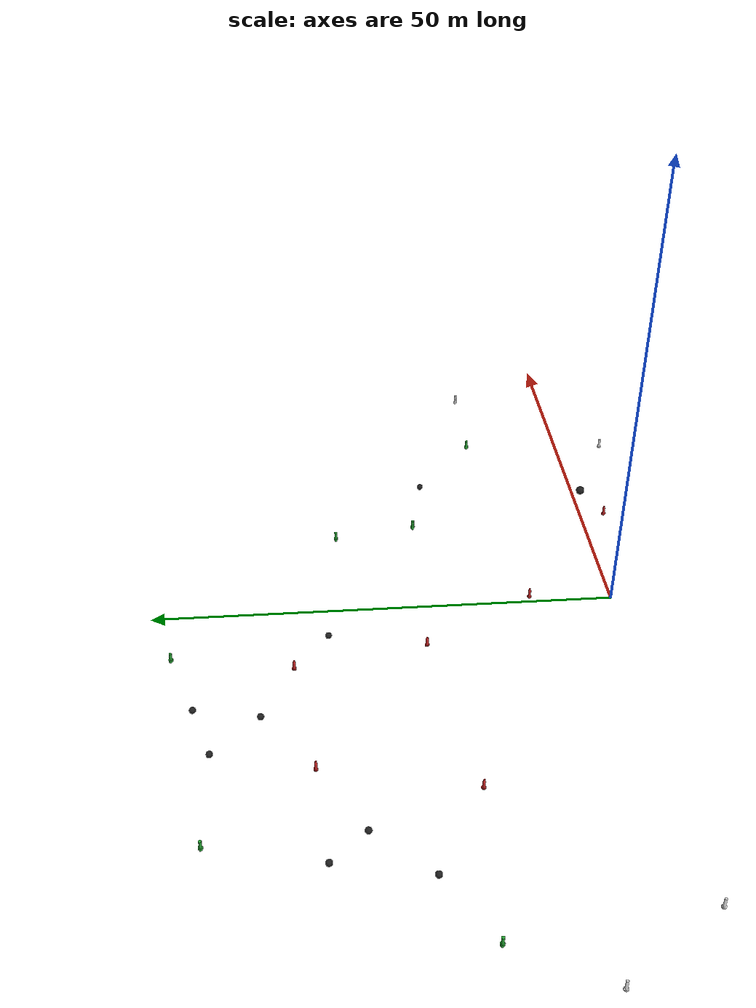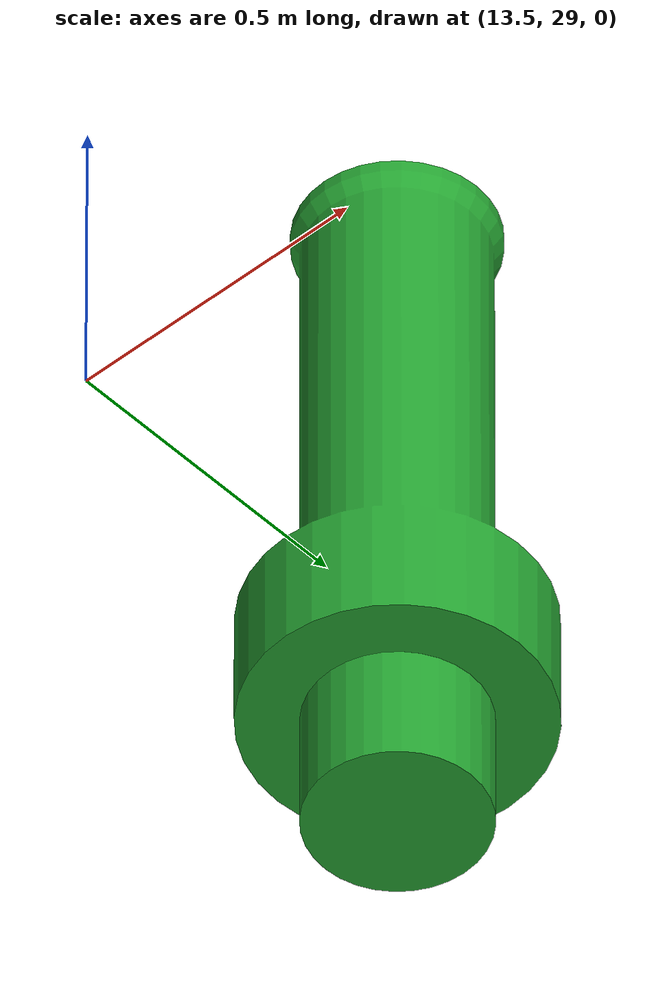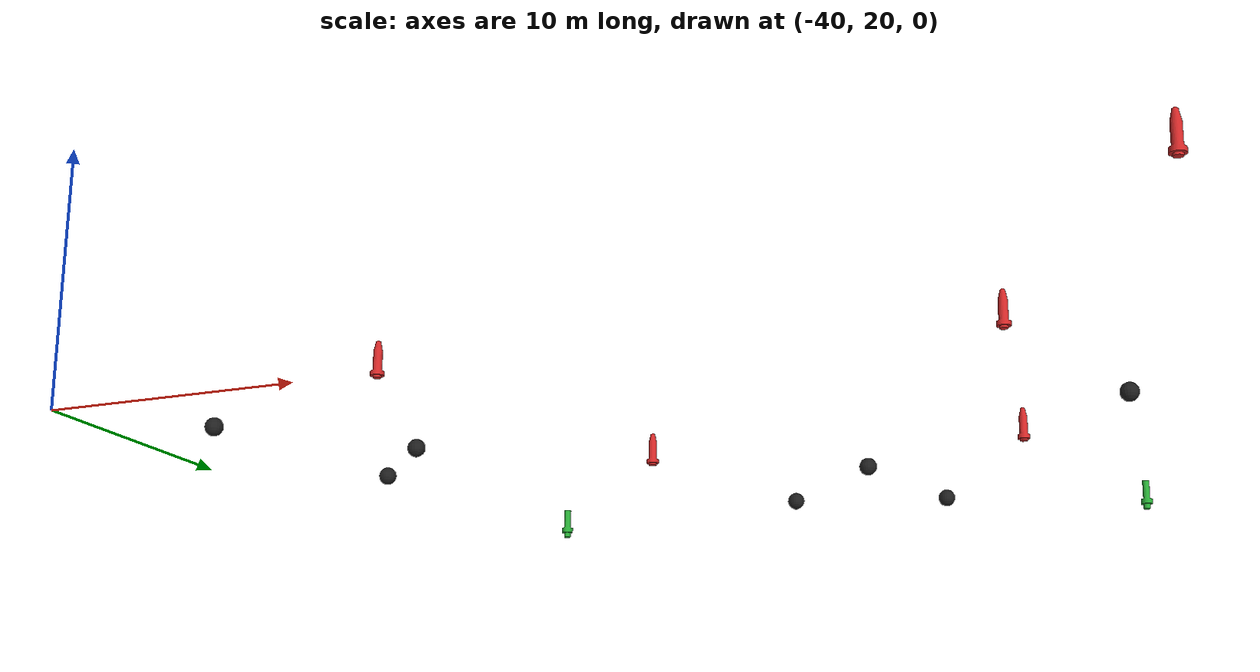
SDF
<?xml version="1.0"?>
<!-- Prototype of the VRX navigation task -->
<sdf version="1.6">
  <model name="navigation_task_2022">
    <!-- Start -->
    <!-- Starboard_border -->
    <include>
      <name>red_bound_start</name>
      <pose>30.8874 -5.80274 -0.2 0 -0 0</pose>
      <uri>model://surmark46104</uri>
    </include>

    <include>
      <name>red_bound_1</name>
      <pose>16.4227 -3.0515 0 0 -0 0</pose>
      <uri>model://surmark950410</uri>
    </include>

    <include>
      <name>red_bound_2</name>
      <pose>1.574 8.7242 0 0 -0 0</pose>
      <uri>model://surmark950410</uri>
    </include>

    <include>
      <name>red_bound_3</name>
      <pose>-5.5798 20.9289 0 0 -0 0</pose>
      <uri>model://surmark950410</uri>
    </include>

    <include>
      <name>red_bound_4</name>
      <pose>-8.2084 34.9953 0 0 -0 0</pose>
      <uri>model://surmark950410</uri>
    </include>

    <include>
      <name>red_bound_5</name>
      <pose>-22.3051 33.4804 0 0 -0 0</pose>
      <uri>model://surmark950410</uri>
    </include>

    <include>
      <name>red_bound_6</name>
      <pose>-25.539 18.0283 -0.2 0 -0 0</pose>
      <uri>model://surmark950410</uri>
    </include>
    <include>
      <name>red_bound_end</name>
      <pose>-40.539 0.0283 -0.2 0 -0 0</pose>
      <uri>model://surmark46104</uri>
    </include>

    <!-- Port_border -->
    <include>
      <name>green_bound_start</name>
      <pose>43.2914 11.2 -0.2 0 -0 0</pose>
      <uri>model://surmark46104</uri>
    </include>

    <include>
      <name>green_bound_1</name>
      <pose>32.3915 11.2422 -0.2 0 -0 0</pose>
      <uri>model://surmark950400</uri>
    </include>

    <include>
      <name>green_bound_2</name>
      <pose>15.4509 20.1164 -0.2 0 -0 0</pose>
      <uri>model://surmark950400</uri>
    </include>

    <include>
      <name>green_bound_3</name>
      <pose>13.7734 29.351 -0.2 0 -0 0</pose>
      <uri>model://surmark950400</uri>
    </include>

    <include>
      <name>green_bound_4</name>
      <pose>-5.9557 47.7238 -0.2 0 -0 0</pose>
      <uri>model://surmark950400</uri>
    </include>

    <include>
      <name>green_bound_5</name>
      <pose>-30.8278 44.0979 -0.2 0 -0 0</pose>
      <uri>model://surmark950400</uri>
    </include>

    <include>
      <name>green_bound_6</name>
      <pose>-42.643 19.1729 -0.2 0 -0 0</pose>
      <uri>model://surmark950400</uri>
    </include>

    <include>
      <name>green_bound_end</name>
      <pose>-47.643 10.1729 -0.2 0 -0 0</pose>
      <uri>model://surmark46104</uri>
    </include>

    <!-- Obstacles -->

    <include>
      <name>obstacle_1</name>
      <pose>23.283 18.3719 -0.2 0 -0 0</pose>
      <uri>model://polyform_a5</uri>
    </include>

    <include>
      <name>obstacle_2</name>
      <pose>-3.6471 31.2087 -0.2 0 -0 0</pose>
      <uri>model://polyform_a5</uri>
    </include>

    <include>
      <name>obstacle_3</name>
      <pose>-15.2333 38.5559 -0.2 0 -0 0</pose>
      <uri>model://polyform_a5</uri>
    </include>

    <include>
      <name>obstacle_4</name>
      <pose>-13.842 45.2626 -0.2 0 -0 0</pose>
      <uri>model://polyform_a5</uri>
    </include>

    <include>
      <name>obstacle_5</name>
      <pose>-19.9105 43.4974 -0.2 0 -0 0</pose>
      <uri>model://polyform_a5</uri>
    </include>

    <include>
      <name>obstacle_6</name>
      <pose>-33.5759 32.8883 -0.2 0 -0 0</pose>
      <uri>model://polyform_a5</uri>
    </include>

    <include>
      <name>obstacle_7</name>
      <pose>-30.2334 29.1624 -0.2 0 -0 0</pose>
      <uri>model://polyform_a5</uri>
    </include>

    <include>
      <name>obstacle_8</name>
      <pose>-35.506 23.524 -0.2 0 -0 0</pose>
      <uri>model://polyform_a5</uri>
    </include>

    <include>
      <name>obstacle_9</name>
      <pose>21.0734 -1.21053 -0.2 0 -0 0</pose>
      <uri>model://polyform_a7</uri>
    </include>
  </model>
</sdf>

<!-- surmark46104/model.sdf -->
<sdf version="1.6">
  <model name="surmark46104">
    <link name="link">
      <inertial>
        <pose>0 0 -2 0 0 0</pose>
        <!-- Mass determined based on buoyancy geometry so object
             floats at mid-point of sphere -->
        <mass>25</mass>
        <!-- Mark only - based on cylinder -->
        <inertia>
          <ixx>1.0</ixx>
          <ixy>0</ixy>
          <ixz>0</ixz>
          <iyy>1.0</iyy>
          <iyz>0</iyz>
          <izz>0.1</izz>
        </inertia>
      </inertial>
      <collision name="collision_inner">
        <pose>0 0 0.367 0 0 0</pose>
        <geometry>
          <cylinder>
            <radius>0.13</radius>
            <length>1.25</length>
          </cylinder>
        </geometry>
      </collision>
      <collision name="collision_outer">
        <pose>0 0 -0.075 0 0 0</pose>
        <geometry>
          <cylinder>
            <radius>0.23</radius>
            <length>0.16</length>
          </cylinder>
        </geometry>
      </collision>
      <visual name="visual">
        <geometry>
	        <mesh><uri>model://surmark46104/mesh/surmark46104.dae</uri></mesh>
        </geometry>
        <material>
          <script>
            <uri>file://media/materials/scripts/gazebo.material</uri>
            <name>Gazebo/White</name>
          </script>
        </material>
      </visual>
    </link>
    <plugin name="BuoyancyPlugin" filename="libbuoyancy_gazebo_plugin.so">
      <wave_model>ocean_waves</wave_model>
      <fluid_density>1000</fluid_density>
      <fluid_level>0.0</fluid_level>
      <linear_drag>25.0</linear_drag>
      <angular_drag>2.0</angular_drag>
      <buoyancy name="buoyancy_sphere">
        <link_name>link</link_name>
        <pose>0 0 -0.08 0 0 0</pose>
        <geometry>
          <sphere>
            <radius>0.23</radius>
          </sphere>
        </geometry>
      </buoyancy>
    </plugin>
  </model>
</sdf>

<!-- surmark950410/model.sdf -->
<sdf version="1.6">
  <model name="surmark950410">
    <link name="link">
      <inertial>
        <pose>0 0 -2 0 0 0</pose>
        <!-- Mass determined based on buoyancy geometry so object
             floats at mid-point of sphere -->
        <mass>25</mass>
        <!-- Mark only - based on cylinder -->
        <inertia>
          <ixx>1.0</ixx>
          <ixy>0</ixy>
          <ixz>0</ixz>
          <iyy>1.0</iyy>
          <iyz>0</iyz>
          <izz>0.1</izz>
        </inertia>
      </inertial>
      <collision name="collision_inner">
        <pose>0 0 -0.01 0 0 0</pose>
        <geometry>
          <cylinder>
            <radius>0.15</radius>
            <length>1.26</length>
          </cylinder>
        </geometry>
      </collision>
      <collision name="collision_outer">
        <pose>0 0 -0.48 0 0 0</pose>
        <geometry>
          <cylinder>
            <radius>0.24</radius>
            <length>0.15</length>
          </cylinder>
        </geometry>
      </collision>
      <visual name="visual">
        <geometry>
	        <mesh><uri>model://surmark950410/mesh/surmark950410.dae</uri></mesh>
        </geometry>
        <material>
          <script>
            <uri>model://surmark950410/materials/scripts/surmark950410.material</uri>
            <name>surmark950410/Red</name>
          </script>
        </material>
      </visual>
    </link>

    <plugin name="BuoyancyPlugin" filename="libbuoyancy_gazebo_plugin.so">
      <wave_model>ocean_waves</wave_model>
      <fluid_density>1000</fluid_density>
      <fluid_level>0.0</fluid_level>
      <linear_drag>25.0</linear_drag>
      <angular_drag>2.0</angular_drag>
      <buoyancy name="buoyancy_sphere">
        <link_name>link</link_name>
        <pose>0 0 -0.48 0 0 0</pose>
        <geometry>
          <sphere>
            <radius>0.23</radius>
          </sphere>
        </geometry>
      </buoyancy>
    </plugin>

  </model>
</sdf>

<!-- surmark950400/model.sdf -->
<sdf version="1.6">
  <model name="surmark950400">
    <link name="link">
      <inertial>
        <pose>0 0 -2 0 0 0</pose>
        <!-- Mass determined based on buoyancy geometry so object
             floats at mid-point of sphere -->
        <mass>25</mass>
        <!-- Mark only - based on cylinder -->
        <inertia>
          <ixx>1.0</ixx>
          <ixy>0</ixy>
          <ixz>0</ixz>
          <iyy>1.0</iyy>
          <iyz>0</iyz>
          <izz>0.1</izz>
        </inertia>
      </inertial>
      <collision name="collision_inner">
        <pose>0 0 -0.02 0 0 0</pose>
        <geometry>
          <cylinder>
            <radius>0.15</radius>
            <length>1.18</length>
          </cylinder>
        </geometry>
      </collision>
      <collision name="collision_outer">
        <pose>0 0 -0.31 0 0 0</pose>
        <geometry>
          <cylinder>
            <radius>0.24</radius>
            <length>0.2</length>
          </cylinder>
        </geometry>
      </collision>
      <visual name="visual">
        <geometry>
	        <mesh><uri>model://surmark950400/mesh/surmark950400.dae</uri></mesh>
        </geometry>
        <material>
          <script>
            <uri>model://surmark950400/materials/scripts/surmark950400.material</uri>
            <name>surmark950400/Green</name>
          </script>
        </material>
      </visual>
    </link>

    <plugin name="BuoyancyPlugin" filename="libbuoyancy_gazebo_plugin.so">
      <wave_model>ocean_waves</wave_model>
      <fluid_density>1000</fluid_density>
      <fluid_level>0.0</fluid_level>
      <linear_drag>25.0</linear_drag>
      <angular_drag>2.0</angular_drag>
      <buoyancy name="buoyancy_sphere">
        <link_name>link</link_name>
        <pose>0 0 -0.31 0 0 0</pose>
        <geometry>
          <sphere>
            <radius>0.23</radius>
          </sphere>
        </geometry>
      </buoyancy>
    </plugin>

  </model>
</sdf>

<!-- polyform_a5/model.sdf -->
<sdf version="1.6">
  <!-- Reference: https://www.polyformus.com/buoys/a-series -->
  <model name="polyform_a5">
    <static>false</static>
    <pose>0 0 0 0 0 0</pose>
    <link name="base_link">
      <inertial>
        <!-- Reference: https://www.sailrite.com/PDF/Polyform-Buoys-Fenders-Accessories.pdf, page 8 -->
        <mass>8.98</mass>
      </inertial>
      <visual name="visual">
        <geometry>
          <sphere><radius>0.343</radius></sphere>
        </geometry>
        <material>
          <script>
            <uri>file://media/materials/scripts/gazebo.material</uri>
            <name>Gazebo/Black</name>
          </script>
        </material>
      </visual>
      <collision name="collision">
        <geometry>
          <sphere><radius>0.343</radius></sphere>
        </geometry>
      </collision>
    </link>

    <plugin name="BuoyancyPlugin" filename="libbuoyancy_gazebo_plugin.so">
      <wave_model>ocean_waves</wave_model>
      <fluid_density>1000</fluid_density>
      <fluid_level>0.0</fluid_level>
      <linear_drag>20.0</linear_drag>
      <angular_drag>2.0</angular_drag>
      <buoyancy name="buoyancy">
        <link_name>base_link</link_name>
        <geometry>
          <sphere><radius>0.343</radius></sphere>
        </geometry>
      </buoyancy>
    </plugin>

  </model>
</sdf>

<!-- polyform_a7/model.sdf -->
<sdf version="1.6">
  <!-- Reference: https://www.polyformus.com/buoys/a-series -->
  <model name="polyform_a7">
    <static>false</static>
    <pose>0 0 0 0 0 0</pose>
    <link name="base_link">
      <inertial>
        <!-- Reference: https://www.sailrite.com/PDF/Polyform-Buoys-Fenders-Accessories.pdf, page 8 -->
        <mass>24.49</mass>
      </inertial>
      <visual name="visual">
        <geometry>
          <sphere><radius>0.4955</radius></sphere>
        </geometry>
        <material>
          <script>
            <uri>file://media/materials/scripts/gazebo.material</uri>
            <name>Gazebo/Black</name>
          </script>
        </material>
      </visual>
      <collision name="collision">
        <geometry>
          <sphere><radius>0.4955</radius></sphere>
        </geometry>
      </collision>
    </link>

    <plugin name="BuoyancyPlugin" filename="libbuoyancy_gazebo_plugin.so">
      <wave_model>ocean_waves</wave_model>
      <fluid_density>1000</fluid_density>
      <fluid_level>0.0</fluid_level>
      <linear_drag>20.0</linear_drag>
      <angular_drag>2.0</angular_drag>
      <buoyancy name="buoyancy">
        <link_name>base_link</link_name>
        <geometry>
          <sphere><radius>0.4955</radius></sphere>
        </geometry>
      </buoyancy>
    </plugin>

  </model>
</sdf>
